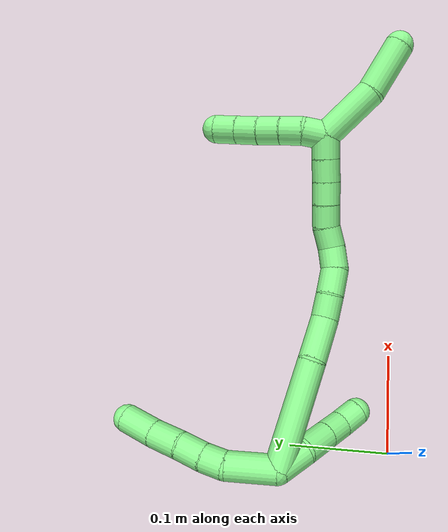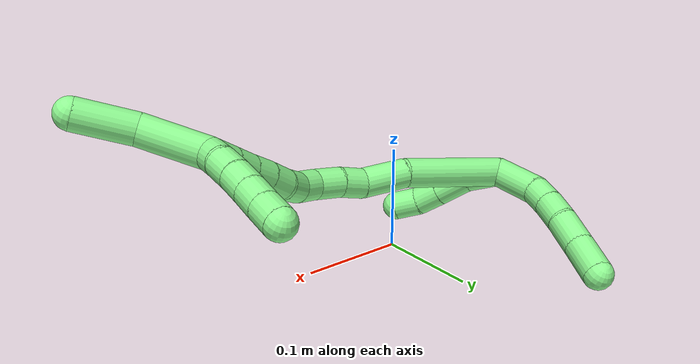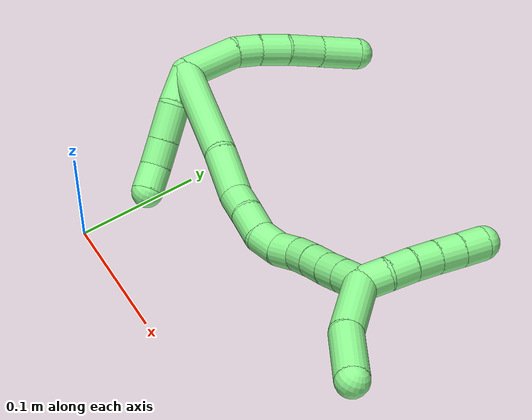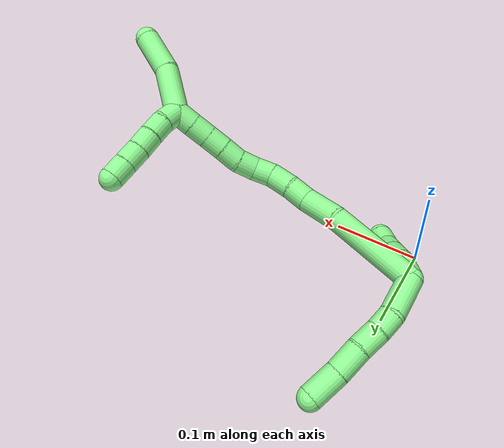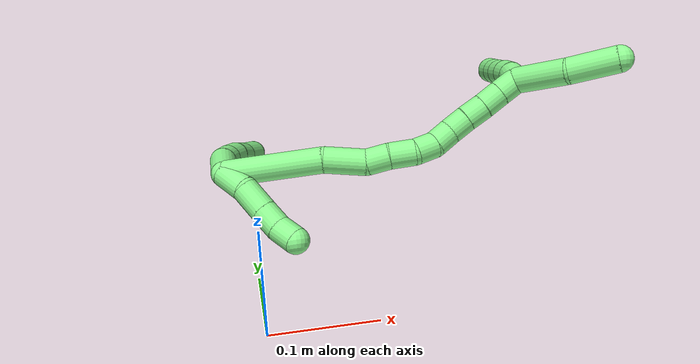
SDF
<sdf version="1.7">
 <world name="default">
  <model name="13">
   <static>0</static>
   <link name="13">
    <collision name="collision-cylinder-e_1_2_8">
     <pose>-0.000352 0.020056 0.009422 -1.13161 -0.015892 0.010093</pose>
     <geometry><cylinder><radius>0.0125</radius><length>0.044324</length></cylinder></geometry>
     <surface>
      <friction><ode><mu>1.16</mu><mu2>1.16</mu2><slip1>0</slip1><slip2>0</slip2></ode></friction>
      <contact><ode><kp>1e+06</kp><kd>1</kd><max_vel>0</max_vel><min_depth>0.001</min_depth></ode></contact>
     </surface>
    </collision>
    <visual name="visual-cylinder-e_1_2_8">
     <pose>-0.000352 0.020056 0.009422 -1.13161 -0.015892 0.010093</pose>
     <geometry><cylinder><radius>0.0125</radius><length>0.044324</length></cylinder></geometry>
     <material><ambient>0.564706 0.984314 0.572549 1</ambient></material>
    </visual>
    <collision name="collision-cylinder-e_2_8_9">
     <pose>0.001587 0.049597 0.02153 -1.29482 0.228405 -0.173024</pose>
     <geometry><cylinder><radius>0.0125</radius><length>0.02024</length></cylinder></geometry>
     <surface>
      <friction><ode><mu>1.16</mu><mu2>1.16</mu2><slip1>0</slip1><slip2>0</slip2></ode></friction>
      <contact><ode><kp>1e+06</kp><kd>1</kd><max_vel>0</max_vel><min_depth>0.001</min_depth></ode></contact>
     </surface>
    </collision>
    <visual name="visual-cylinder-e_2_8_9">
     <pose>0.001587 0.049597 0.02153 -1.29482 0.228405 -0.173024</pose>
     <geometry><cylinder><radius>0.0125</radius><length>0.02024</length></cylinder></geometry>
     <material><ambient>0.564706 0.984314 0.572549 1</ambient></material>
    </visual>
    <collision name="collision-cylinder-e_3_9_10">
     <pose>0.007681 0.070007 0.02702 -1.3196 0.325144 -0.253129</pose>
     <geometry><cylinder><radius>0.0125</radius><length>0.023807</length></cylinder></geometry>
     <surface>
      <friction><ode><mu>1.16</mu><mu2>1.16</mu2><slip1>0</slip1><slip2>0</slip2></ode></friction>
      <contact><ode><kp>1e+06</kp><kd>1</kd><max_vel>0</max_vel><min_depth>0.001</min_depth></ode></contact>
     </surface>
    </collision>
    <visual name="visual-cylinder-e_3_9_10">
     <pose>0.007681 0.070007 0.02702 -1.3196 0.325144 -0.253129</pose>
     <geometry><cylinder><radius>0.0125</radius><length>0.023807</length></cylinder></geometry>
     <material><ambient>0.564706 0.984314 0.572549 1</ambient></material>
    </visual>
    <collision name="collision-cylinder-e_4_10_11">
     <pose>0.015282 0.094791 0.031475 -1.45221 0.265754 -0.236265</pose>
     <geometry><cylinder><radius>0.0125</radius><length>0.028928</length></cylinder></geometry>
     <surface>
      <friction><ode><mu>1.16</mu><mu2>1.16</mu2><slip1>0</slip1><slip2>0</slip2></ode></friction>
      <contact><ode><kp>1e+06</kp><kd>1</kd><max_vel>0</max_vel><min_depth>0.001</min_depth></ode></contact>
     </surface>
    </collision>
    <visual name="visual-cylinder-e_4_10_11">
     <pose>0.015282 0.094791 0.031475 -1.45221 0.265754 -0.236265</pose>
     <geometry><cylinder><radius>0.0125</radius><length>0.028928</length></cylinder></geometry>
     <material><ambient>0.564706 0.984314 0.572549 1</ambient></material>
    </visual>
    <collision name="collision-cylinder-e_5_11_6">
     <pose>0.024626 0.123765 0.03597 -1.38484 0.346014 -0.287881</pose>
     <geometry><cylinder><radius>0.0125</radius><length>0.032701</length></cylinder></geometry>
     <surface>
      <friction><ode><mu>1.16</mu><mu2>1.16</mu2><slip1>0</slip1><slip2>0</slip2></ode></friction>
      <contact><ode><kp>1e+06</kp><kd>1</kd><max_vel>0</max_vel><min_depth>0.001</min_depth></ode></contact>
     </surface>
    </collision>
    <visual name="visual-cylinder-e_5_11_6">
     <pose>0.024626 0.123765 0.03597 -1.38484 0.346014 -0.287881</pose>
     <geometry><cylinder><radius>0.0125</radius><length>0.032701</length></cylinder></geometry>
     <material><ambient>0.564706 0.984314 0.572549 1</ambient></material>
    </visual>
    <collision name="collision-cylinder-e_1_2_12">
     <pose>0.008332 -0.007172 -0.009171 2.47792 0.621139 1.49984</pose>
     <geometry><cylinder><radius>0.0125</radius><length>0.028633</length></cylinder></geometry>
     <surface>
      <friction><ode><mu>1.16</mu><mu2>1.16</mu2><slip1>0</slip1><slip2>0</slip2></ode></friction>
      <contact><ode><kp>1e+06</kp><kd>1</kd><max_vel>0</max_vel><min_depth>0.001</min_depth></ode></contact>
     </surface>
    </collision>
    <visual name="visual-cylinder-e_1_2_12">
     <pose>0.008332 -0.007172 -0.009171 2.47792 0.621139 1.49984</pose>
     <geometry><cylinder><radius>0.0125</radius><length>0.028633</length></cylinder></geometry>
     <material><ambient>0.564706 0.984314 0.572549 1</ambient></material>
    </visual>
    <collision name="collision-cylinder-e_2_12_13">
     <pose>0.023778 -0.018457 -0.030067 2.80416 0.520069 2.00265</pose>
     <geometry><cylinder><radius>0.0125</radius><length>0.028637</length></cylinder></geometry>
     <surface>
      <friction><ode><mu>1.16</mu><mu2>1.16</mu2><slip1>0</slip1><slip2>0</slip2></ode></friction>
      <contact><ode><kp>1e+06</kp><kd>1</kd><max_vel>0</max_vel><min_depth>0.001</min_depth></ode></contact>
     </surface>
    </collision>
    <visual name="visual-cylinder-e_2_12_13">
     <pose>0.023778 -0.018457 -0.030067 2.80416 0.520069 2.00265</pose>
     <geometry><cylinder><radius>0.0125</radius><length>0.028637</length></cylinder></geometry>
     <material><ambient>0.564706 0.984314 0.572549 1</ambient></material>
    </visual>
    <collision name="collision-cylinder-e_3_13_14">
     <pose>0.03634 -0.025876 -0.050493 2.77861 0.529366 1.95128</pose>
     <geometry><cylinder><radius>0.0125</radius><length>0.021568</length></cylinder></geometry>
     <surface>
      <friction><ode><mu>1.16</mu><mu2>1.16</mu2><slip1>0</slip1><slip2>0</slip2></ode></friction>
      <contact><ode><kp>1e+06</kp><kd>1</kd><max_vel>0</max_vel><min_depth>0.001</min_depth></ode></contact>
     </surface>
    </collision>
    <visual name="visual-cylinder-e_3_13_14">
     <pose>0.03634 -0.025876 -0.050493 2.77861 0.529366 1.95128</pose>
     <geometry><cylinder><radius>0.0125</radius><length>0.021568</length></cylinder></geometry>
     <material><ambient>0.564706 0.984314 0.572549 1</ambient></material>
    </visual>
    <collision name="collision-cylinder-e_4_14_5">
     <pose>0.048258 -0.034104 -0.065964 2.51282 0.658238 1.6199</pose>
     <geometry><cylinder><radius>0.0125</radius><length>0.021162</length></cylinder></geometry>
     <surface>
      <friction><ode><mu>1.16</mu><mu2>1.16</mu2><slip1>0</slip1><slip2>0</slip2></ode></friction>
      <contact><ode><kp>1e+06</kp><kd>1</kd><max_vel>0</max_vel><min_depth>0.001</min_depth></ode></contact>
     </surface>
    </collision>
    <visual name="visual-cylinder-e_4_14_5">
     <pose>0.048258 -0.034104 -0.065964 2.51282 0.658238 1.6199</pose>
     <geometry><cylinder><radius>0.0125</radius><length>0.021162</length></cylinder></geometry>
     <material><ambient>0.564706 0.984314 0.572549 1</ambient></material>
    </visual>
    <collision name="collision-cylinder-e_1_2_15">
     <pose>0.045416 -0.01206 -0.001095 1.66137 1.31023 1.39878</pose>
     <geometry><cylinder><radius>0.0125</radius><length>0.094005</length></cylinder></geometry>
     <surface>
      <friction><ode><mu>1.16</mu><mu2>1.16</mu2><slip1>0</slip1><slip2>0</slip2></ode></friction>
      <contact><ode><kp>1e+06</kp><kd>1</kd><max_vel>0</max_vel><min_depth>0.001</min_depth></ode></contact>
     </surface>
    </collision>
    <visual name="visual-cylinder-e_1_2_15">
     <pose>0.045416 -0.01206 -0.001095 1.66137 1.31023 1.39878</pose>
     <geometry><cylinder><radius>0.0125</radius><length>0.094005</length></cylinder></geometry>
     <material><ambient>0.564706 0.984314 0.572549 1</ambient></material>
    </visual>
    <collision name="collision-cylinder-e_2_15_16">
     <pose>0.110044 -0.027126 -0.006342 2.51473 1.31006 2.34306</pose>
     <geometry><cylinder><radius>0.0125</radius><length>0.039768</length></cylinder></geometry>
     <surface>
      <friction><ode><mu>1.16</mu><mu2>1.16</mu2><slip1>0</slip1><slip2>0</slip2></ode></friction>
      <contact><ode><kp>1e+06</kp><kd>1</kd><max_vel>0</max_vel><min_depth>0.001</min_depth></ode></contact>
     </surface>
    </collision>
    <visual name="visual-cylinder-e_2_15_16">
     <pose>0.110044 -0.027126 -0.006342 2.51473 1.31006 2.34306</pose>
     <geometry><cylinder><radius>0.0125</radius><length>0.039768</length></cylinder></geometry>
     <material><ambient>0.564706 0.984314 0.572549 1</ambient></material>
    </visual>
    <collision name="collision-cylinder-e_3_16_17">
     <pose>0.139866 -0.032572 -0.009268 1.10525 1.319 0.892023</pose>
     <geometry><cylinder><radius>0.0125</radius><length>0.021911</length></cylinder></geometry>
     <surface>
      <friction><ode><mu>1.16</mu><mu2>1.16</mu2><slip1>0</slip1><slip2>0</slip2></ode></friction>
      <contact><ode><kp>1e+06</kp><kd>1</kd><max_vel>0</max_vel><min_depth>0.001</min_depth></ode></contact>
     </surface>
    </collision>
    <visual name="visual-cylinder-e_3_16_17">
     <pose>0.139866 -0.032572 -0.009268 1.10525 1.319 0.892023</pose>
     <geometry><cylinder><radius>0.0125</radius><length>0.021911</length></cylinder></geometry>
     <material><ambient>0.564706 0.984314 0.572549 1</ambient></material>
    </visual>
    <collision name="collision-cylinder-e_4_17_18">
     <pose>0.162396 -0.03675 -0.007972 1.53003 1.42582 1.38559</pose>
     <geometry><cylinder><radius>0.0125</radius><length>0.024094</length></cylinder></geometry>
     <surface>
      <friction><ode><mu>1.16</mu><mu2>1.16</mu2><slip1>0</slip1><slip2>0</slip2></ode></friction>
      <contact><ode><kp>1e+06</kp><kd>1</kd><max_vel>0</max_vel><min_depth>0.001</min_depth></ode></contact>
     </surface>
    </collision>
    <visual name="visual-cylinder-e_4_17_18">
     <pose>0.162396 -0.03675 -0.007972 1.53003 1.42582 1.38559</pose>
     <geometry><cylinder><radius>0.0125</radius><length>0.024094</length></cylinder></geometry>
     <material><ambient>0.564706 0.984314 0.572549 1</ambient></material>
    </visual>
    <collision name="collision-cylinder-e_5_18_19">
     <pose>0.184039 -0.037447 -0.005537 -0.415163 1.31115 -0.321153</pose>
     <geometry><cylinder><radius>0.0125</radius><length>0.020118</length></cylinder></geometry>
     <surface>
      <friction><ode><mu>1.16</mu><mu2>1.16</mu2><slip1>0</slip1><slip2>0</slip2></ode></friction>
      <contact><ode><kp>1e+06</kp><kd>1</kd><max_vel>0</max_vel><min_depth>0.001</min_depth></ode></contact>
     </surface>
    </collision>
    <visual name="visual-cylinder-e_5_18_19">
     <pose>0.184039 -0.037447 -0.005537 -0.415163 1.31115 -0.321153</pose>
     <geometry><cylinder><radius>0.0125</radius><length>0.020118</length></cylinder></geometry>
     <material><ambient>0.564706 0.984314 0.572549 1</ambient></material>
    </visual>
    <collision name="collision-cylinder-e_6_19_20">
     <pose>0.202232 -0.035569 0.002121 -0.156696 1.00662 -0.086402</pose>
     <geometry><cylinder><radius>0.0125</radius><length>0.02005</length></cylinder></geometry>
     <surface>
      <friction><ode><mu>1.16</mu><mu2>1.16</mu2><slip1>0</slip1><slip2>0</slip2></ode></friction>
      <contact><ode><kp>1e+06</kp><kd>1</kd><max_vel>0</max_vel><min_depth>0.001</min_depth></ode></contact>
     </surface>
    </collision>
    <visual name="visual-cylinder-e_6_19_20">
     <pose>0.202232 -0.035569 0.002121 -0.156696 1.00662 -0.086402</pose>
     <geometry><cylinder><radius>0.0125</radius><length>0.02005</length></cylinder></geometry>
     <material><ambient>0.564706 0.984314 0.572549 1</ambient></material>
    </visual>
    <collision name="collision-cylinder-e_7_20_21">
     <pose>0.219207 -0.036441 0.012416 0.329201 1.01474 0.184155</pose>
     <geometry><cylinder><radius>0.0125</radius><length>0.020024</length></cylinder></geometry>
     <surface>
      <friction><ode><mu>1.16</mu><mu2>1.16</mu2><slip1>0</slip1><slip2>0</slip2></ode></friction>
      <contact><ode><kp>1e+06</kp><kd>1</kd><max_vel>0</max_vel><min_depth>0.001</min_depth></ode></contact>
     </surface>
    </collision>
    <visual name="visual-cylinder-e_7_20_21">
     <pose>0.219207 -0.036441 0.012416 0.329201 1.01474 0.184155</pose>
     <geometry><cylinder><radius>0.0125</radius><length>0.020024</length></cylinder></geometry>
     <material><ambient>0.564706 0.984314 0.572549 1</ambient></material>
    </visual>
    <collision name="collision-cylinder-e_8_21_22">
     <pose>0.236476 -0.039721 0.02197 0.332326 1.06836 0.197768</pose>
     <geometry><cylinder><radius>0.0125</radius><length>0.020003</length></cylinder></geometry>
     <surface>
      <friction><ode><mu>1.16</mu><mu2>1.16</mu2><slip1>0</slip1><slip2>0</slip2></ode></friction>
      <contact><ode><kp>1e+06</kp><kd>1</kd><max_vel>0</max_vel><min_depth>0.001</min_depth></ode></contact>
     </surface>
    </collision>
    <visual name="visual-cylinder-e_8_21_22">
     <pose>0.236476 -0.039721 0.02197 0.332326 1.06836 0.197768</pose>
     <geometry><cylinder><radius>0.0125</radius><length>0.020003</length></cylinder></geometry>
     <material><ambient>0.564706 0.984314 0.572549 1</ambient></material>
    </visual>
    <collision name="collision-cylinder-e_9_22_23">
     <pose>0.253786 -0.042726 0.031542 0.278284 1.0224 0.156793</pose>
     <geometry><cylinder><radius>0.0125</radius><length>0.020026</length></cylinder></geometry>
     <surface>
      <friction><ode><mu>1.16</mu><mu2>1.16</mu2><slip1>0</slip1><slip2>0</slip2></ode></friction>
      <contact><ode><kp>1e+06</kp><kd>1</kd><max_vel>0</max_vel><min_depth>0.001</min_depth></ode></contact>
     </surface>
    </collision>
    <visual name="visual-cylinder-e_9_22_23">
     <pose>0.253786 -0.042726 0.031542 0.278284 1.0224 0.156793</pose>
     <geometry><cylinder><radius>0.0125</radius><length>0.020026</length></cylinder></geometry>
     <material><ambient>0.564706 0.984314 0.572549 1</ambient></material>
    </visual>
    <collision name="collision-cylinder-e_10_23_1">
     <pose>0.270919 -0.045723 0.04144 0.310071 1.03297 0.177051</pose>
     <geometry><cylinder><radius>0.0125</radius><length>0.020002</length></cylinder></geometry>
     <surface>
      <friction><ode><mu>1.16</mu><mu2>1.16</mu2><slip1>0</slip1><slip2>0</slip2></ode></friction>
      <contact><ode><kp>1e+06</kp><kd>1</kd><max_vel>0</max_vel><min_depth>0.001</min_depth></ode></contact>
     </surface>
    </collision>
    <visual name="visual-cylinder-e_10_23_1">
     <pose>0.270919 -0.045723 0.04144 0.310071 1.03297 0.177051</pose>
     <geometry><cylinder><radius>0.0125</radius><length>0.020002</length></cylinder></geometry>
     <material><ambient>0.564706 0.984314 0.572549 1</ambient></material>
    </visual>
    <collision name="collision-cylinder-e_1_1_24">
     <pose>0.298016 -0.066376 0.043858 1.69901 0.765805 0.859044</pose>
     <geometry><cylinder><radius>0.0125</radius><length>0.053405</length></cylinder></geometry>
     <surface>
      <friction><ode><mu>1.16</mu><mu2>1.16</mu2><slip1>0</slip1><slip2>0</slip2></ode></friction>
      <contact><ode><kp>1e+06</kp><kd>1</kd><max_vel>0</max_vel><min_depth>0.001</min_depth></ode></contact>
     </surface>
    </collision>
    <visual name="visual-cylinder-e_1_1_24">
     <pose>0.298016 -0.066376 0.043858 1.69901 0.765805 0.859044</pose>
     <geometry><cylinder><radius>0.0125</radius><length>0.053405</length></cylinder></geometry>
     <material><ambient>0.564706 0.984314 0.572549 1</ambient></material>
    </visual>
    <collision name="collision-cylinder-e_2_24_4">
     <pose>0.336436 -0.09756 0.041644 1.55031 1.02489 1.00747</pose>
     <geometry><cylinder><radius>0.0125</radius><length>0.046595</length></cylinder></geometry>
     <surface>
      <friction><ode><mu>1.16</mu><mu2>1.16</mu2><slip1>0</slip1><slip2>0</slip2></ode></friction>
      <contact><ode><kp>1e+06</kp><kd>1</kd><max_vel>0</max_vel><min_depth>0.001</min_depth></ode></contact>
     </surface>
    </collision>
    <visual name="visual-cylinder-e_2_24_4">
     <pose>0.336436 -0.09756 0.041644 1.55031 1.02489 1.00747</pose>
     <geometry><cylinder><radius>0.0125</radius><length>0.046595</length></cylinder></geometry>
     <material><ambient>0.564706 0.984314 0.572549 1</ambient></material>
    </visual>
    <collision name="collision-cylinder-e_1_1_25">
     <pose>0.280934 -0.038709 0.051258 -1.04834 0.143089 -0.082815</pose>
     <geometry><cylinder><radius>0.0125</radius><length>0.02</length></cylinder></geometry>
     <surface>
      <friction><ode><mu>1.16</mu><mu2>1.16</mu2><slip1>0</slip1><slip2>0</slip2></ode></friction>
      <contact><ode><kp>1e+06</kp><kd>1</kd><max_vel>0</max_vel><min_depth>0.001</min_depth></ode></contact>
     </surface>
    </collision>
    <visual name="visual-cylinder-e_1_1_25">
     <pose>0.280934 -0.038709 0.051258 -1.04834 0.143089 -0.082815</pose>
     <geometry><cylinder><radius>0.0125</radius><length>0.02</length></cylinder></geometry>
     <material><ambient>0.564706 0.984314 0.572549 1</ambient></material>
    </visual>
    <collision name="collision-cylinder-e_2_25_26">
     <pose>0.282673 -0.020737 0.05961 -1.22236 0.031228 -0.021881</pose>
     <geometry><cylinder><radius>0.0125</radius><length>0.02</length></cylinder></geometry>
     <surface>
      <friction><ode><mu>1.16</mu><mu2>1.16</mu2><slip1>0</slip1><slip2>0</slip2></ode></friction>
      <contact><ode><kp>1e+06</kp><kd>1</kd><max_vel>0</max_vel><min_depth>0.001</min_depth></ode></contact>
     </surface>
    </collision>
    <visual name="visual-cylinder-e_2_25_26">
     <pose>0.282673 -0.020737 0.05961 -1.22236 0.031228 -0.021881</pose>
     <geometry><cylinder><radius>0.0125</radius><length>0.02</length></cylinder></geometry>
     <material><ambient>0.564706 0.984314 0.572549 1</ambient></material>
    </visual>
    <collision name="collision-cylinder-e_3_26_27">
     <pose>0.283439 -0.001761 0.06585 -1.28382 0.045437 -0.033968</pose>
     <geometry><cylinder><radius>0.0125</radius><length>0.02</length></cylinder></geometry>
     <surface>
      <friction><ode><mu>1.16</mu><mu2>1.16</mu2><slip1>0</slip1><slip2>0</slip2></ode></friction>
      <contact><ode><kp>1e+06</kp><kd>1</kd><max_vel>0</max_vel><min_depth>0.001</min_depth></ode></contact>
     </surface>
    </collision>
    <visual name="visual-cylinder-e_3_26_27">
     <pose>0.283439 -0.001761 0.06585 -1.28382 0.045437 -0.033968</pose>
     <geometry><cylinder><radius>0.0125</radius><length>0.02</length></cylinder></geometry>
     <material><ambient>0.564706 0.984314 0.572549 1</ambient></material>
    </visual>
    <collision name="collision-cylinder-e_4_27_28">
     <pose>0.284712 0.017342 0.071619 -1.27116 0.081968 -0.060483</pose>
     <geometry><cylinder><radius>0.0125</radius><length>0.02</length></cylinder></geometry>
     <surface>
      <friction><ode><mu>1.16</mu><mu2>1.16</mu2><slip1>0</slip1><slip2>0</slip2></ode></friction>
      <contact><ode><kp>1e+06</kp><kd>1</kd><max_vel>0</max_vel><min_depth>0.001</min_depth></ode></contact>
     </surface>
    </collision>
    <visual name="visual-cylinder-e_4_27_28">
     <pose>0.284712 0.017342 0.071619 -1.27116 0.081968 -0.060483</pose>
     <geometry><cylinder><radius>0.0125</radius><length>0.02</length></cylinder></geometry>
     <material><ambient>0.564706 0.984314 0.572549 1</ambient></material>
    </visual>
    <collision name="collision-cylinder-e_5_28_3">
     <pose>0.28627 0.03634 0.07767 -1.2538 0.074001 -0.053616</pose>
     <geometry><cylinder><radius>0.0125</radius><length>0.02</length></cylinder></geometry>
     <surface>
      <friction><ode><mu>1.16</mu><mu2>1.16</mu2><slip1>0</slip1><slip2>0</slip2></ode></friction>
      <contact><ode><kp>1e+06</kp><kd>1</kd><max_vel>0</max_vel><min_depth>0.001</min_depth></ode></contact>
     </surface>
    </collision>
    <visual name="visual-cylinder-e_5_28_3">
     <pose>0.28627 0.03634 0.07767 -1.2538 0.074001 -0.053616</pose>
     <geometry><cylinder><radius>0.0125</radius><length>0.02</length></cylinder></geometry>
     <material><ambient>0.564706 0.984314 0.572549 1</ambient></material>
    </visual>
    <collision name="collision-sphere-3">
     <pose>0.287009 0.045816 0.080778 0 -0 0</pose>
     <geometry><sphere><radius>0.0125</radius></sphere></geometry>
     <surface>
      <friction><ode><mu>1.16</mu><mu2>1.16</mu2><slip1>0</slip1><slip2>0</slip2></ode></friction>
      <contact><ode><kp>1e+06</kp><kd>1</kd><max_vel>0</max_vel><min_depth>0.001</min_depth></ode></contact>
     </surface>
    </collision>
    <visual name="visual-sphere-3">
     <pose>0.287009 0.045816 0.080778 0 -0 0</pose>
     <geometry><sphere><radius>0.0125</radius></sphere></geometry>
     <material><ambient>0.564706 0.984314 0.572549 1</ambient></material>
    </visual>
    <collision name="collision-sphere-28">
     <pose>0.285531 0.026864 0.074561 0 -0 0</pose>
     <geometry><sphere><radius>0.0125</radius></sphere></geometry>
     <surface>
      <friction><ode><mu>1.16</mu><mu2>1.16</mu2><slip1>0</slip1><slip2>0</slip2></ode></friction>
      <contact><ode><kp>1e+06</kp><kd>1</kd><max_vel>0</max_vel><min_depth>0.001</min_depth></ode></contact>
     </surface>
    </collision>
    <visual name="visual-sphere-28">
     <pose>0.285531 0.026864 0.074561 0 -0 0</pose>
     <geometry><sphere><radius>0.0125</radius></sphere></geometry>
     <material><ambient>0.564706 0.984314 0.572549 1</ambient></material>
    </visual>
    <collision name="collision-sphere-27">
     <pose>0.283893 0.00782 0.068677 0 -0 0</pose>
     <geometry><sphere><radius>0.0125</radius></sphere></geometry>
     <surface>
      <friction><ode><mu>1.16</mu><mu2>1.16</mu2><slip1>0</slip1><slip2>0</slip2></ode></friction>
      <contact><ode><kp>1e+06</kp><kd>1</kd><max_vel>0</max_vel><min_depth>0.001</min_depth></ode></contact>
     </surface>
    </collision>
    <visual name="visual-sphere-27">
     <pose>0.283893 0.00782 0.068677 0 -0 0</pose>
     <geometry><sphere><radius>0.0125</radius></sphere></geometry>
     <material><ambient>0.564706 0.984314 0.572549 1</ambient></material>
    </visual>
    <collision name="collision-sphere-26">
     <pose>0.282985 -0.011343 0.063022 0 -0 0</pose>
     <geometry><sphere><radius>0.0125</radius></sphere></geometry>
     <surface>
      <friction><ode><mu>1.16</mu><mu2>1.16</mu2><slip1>0</slip1><slip2>0</slip2></ode></friction>
      <contact><ode><kp>1e+06</kp><kd>1</kd><max_vel>0</max_vel><min_depth>0.001</min_depth></ode></contact>
     </surface>
    </collision>
    <visual name="visual-sphere-26">
     <pose>0.282985 -0.011343 0.063022 0 -0 0</pose>
     <geometry><sphere><radius>0.0125</radius></sphere></geometry>
     <material><ambient>0.564706 0.984314 0.572549 1</ambient></material>
    </visual>
    <collision name="collision-sphere-25">
     <pose>0.28236 -0.030131 0.056197 0 -0 0</pose>
     <geometry><sphere><radius>0.0125</radius></sphere></geometry>
     <surface>
      <friction><ode><mu>1.16</mu><mu2>1.16</mu2><slip1>0</slip1><slip2>0</slip2></ode></friction>
      <contact><ode><kp>1e+06</kp><kd>1</kd><max_vel>0</max_vel><min_depth>0.001</min_depth></ode></contact>
     </surface>
    </collision>
    <visual name="visual-sphere-25">
     <pose>0.28236 -0.030131 0.056197 0 -0 0</pose>
     <geometry><sphere><radius>0.0125</radius></sphere></geometry>
     <material><ambient>0.564706 0.984314 0.572549 1</ambient></material>
    </visual>
    <collision name="collision-sphere-4">
     <pose>0.356347 -0.109653 0.041892 0 -0 0</pose>
     <geometry><sphere><radius>0.0125</radius></sphere></geometry>
     <surface>
      <friction><ode><mu>1.16</mu><mu2>1.16</mu2><slip1>0</slip1><slip2>0</slip2></ode></friction>
      <contact><ode><kp>1e+06</kp><kd>1</kd><max_vel>0</max_vel><min_depth>0.001</min_depth></ode></contact>
     </surface>
    </collision>
    <visual name="visual-sphere-4">
     <pose>0.356347 -0.109653 0.041892 0 -0 0</pose>
     <geometry><sphere><radius>0.0125</radius></sphere></geometry>
     <material><ambient>0.564706 0.984314 0.572549 1</ambient></material>
    </visual>
    <collision name="collision-sphere-24">
     <pose>0.316525 -0.085466 0.041396 0 -0 0</pose>
     <geometry><sphere><radius>0.0125</radius></sphere></geometry>
     <surface>
      <friction><ode><mu>1.16</mu><mu2>1.16</mu2><slip1>0</slip1><slip2>0</slip2></ode></friction>
      <contact><ode><kp>1e+06</kp><kd>1</kd><max_vel>0</max_vel><min_depth>0.001</min_depth></ode></contact>
     </surface>
    </collision>
    <visual name="visual-sphere-24">
     <pose>0.316525 -0.085466 0.041396 0 -0 0</pose>
     <geometry><sphere><radius>0.0125</radius></sphere></geometry>
     <material><ambient>0.564706 0.984314 0.572549 1</ambient></material>
    </visual>
    <collision name="collision-sphere-1">
     <pose>0.279508 -0.047286 0.046319 0 -0 0</pose>
     <geometry><sphere><radius>0.0125</radius></sphere></geometry>
     <surface>
      <friction><ode><mu>1.16</mu><mu2>1.16</mu2><slip1>0</slip1><slip2>0</slip2></ode></friction>
      <contact><ode><kp>1e+06</kp><kd>1</kd><max_vel>0</max_vel><min_depth>0.001</min_depth></ode></contact>
     </surface>
    </collision>
    <visual name="visual-sphere-1">
     <pose>0.279508 -0.047286 0.046319 0 -0 0</pose>
     <geometry><sphere><radius>0.0125</radius></sphere></geometry>
     <material><ambient>0.564706 0.984314 0.572549 1</ambient></material>
    </visual>
    <collision name="collision-sphere-23">
     <pose>0.26233 -0.04416 0.036561 0 -0 0</pose>
     <geometry><sphere><radius>0.0125</radius></sphere></geometry>
     <surface>
      <friction><ode><mu>1.16</mu><mu2>1.16</mu2><slip1>0</slip1><slip2>0</slip2></ode></friction>
      <contact><ode><kp>1e+06</kp><kd>1</kd><max_vel>0</max_vel><min_depth>0.001</min_depth></ode></contact>
     </surface>
    </collision>
    <visual name="visual-sphere-23">
     <pose>0.26233 -0.04416 0.036561 0 -0 0</pose>
     <geometry><sphere><radius>0.0125</radius></sphere></geometry>
     <material><ambient>0.564706 0.984314 0.572549 1</ambient></material>
    </visual>
    <collision name="collision-sphere-22">
     <pose>0.245241 -0.041292 0.026523 0 -0 0</pose>
     <geometry><sphere><radius>0.0125</radius></sphere></geometry>
     <surface>
      <friction><ode><mu>1.16</mu><mu2>1.16</mu2><slip1>0</slip1><slip2>0</slip2></ode></friction>
      <contact><ode><kp>1e+06</kp><kd>1</kd><max_vel>0</max_vel><min_depth>0.001</min_depth></ode></contact>
     </surface>
    </collision>
    <visual name="visual-sphere-22">
     <pose>0.245241 -0.041292 0.026523 0 -0 0</pose>
     <geometry><sphere><radius>0.0125</radius></sphere></geometry>
     <material><ambient>0.564706 0.984314 0.572549 1</ambient></material>
    </visual>
    <collision name="collision-sphere-21">
     <pose>0.227711 -0.038149 0.017417 0 -0 0</pose>
     <geometry><sphere><radius>0.0125</radius></sphere></geometry>
     <surface>
      <friction><ode><mu>1.16</mu><mu2>1.16</mu2><slip1>0</slip1><slip2>0</slip2></ode></friction>
      <contact><ode><kp>1e+06</kp><kd>1</kd><max_vel>0</max_vel><min_depth>0.001</min_depth></ode></contact>
     </surface>
    </collision>
    <visual name="visual-sphere-21">
     <pose>0.227711 -0.038149 0.017417 0 -0 0</pose>
     <geometry><sphere><radius>0.0125</radius></sphere></geometry>
     <material><ambient>0.564706 0.984314 0.572549 1</ambient></material>
    </visual>
    <collision name="collision-sphere-6">
     <pose>0.030172 0.138881 0.038814 0 -0 0</pose>
     <geometry><sphere><radius>0.0125</radius></sphere></geometry>
     <surface>
      <friction><ode><mu>1.16</mu><mu2>1.16</mu2><slip1>0</slip1><slip2>0</slip2></ode></friction>
      <contact><ode><kp>1e+06</kp><kd>1</kd><max_vel>0</max_vel><min_depth>0.001</min_depth></ode></contact>
     </surface>
    </collision>
    <visual name="visual-sphere-6">
     <pose>0.030172 0.138881 0.038814 0 -0 0</pose>
     <geometry><sphere><radius>0.0125</radius></sphere></geometry>
     <material><ambient>0.564706 0.984314 0.572549 1</ambient></material>
    </visual>
    <collision name="collision-sphere-11">
     <pose>0.019081 0.108649 0.033126 0 -0 0</pose>
     <geometry><sphere><radius>0.0125</radius></sphere></geometry>
     <surface>
      <friction><ode><mu>1.16</mu><mu2>1.16</mu2><slip1>0</slip1><slip2>0</slip2></ode></friction>
      <contact><ode><kp>1e+06</kp><kd>1</kd><max_vel>0</max_vel><min_depth>0.001</min_depth></ode></contact>
     </surface>
    </collision>
    <visual name="visual-sphere-11">
     <pose>0.019081 0.108649 0.033126 0 -0 0</pose>
     <geometry><sphere><radius>0.0125</radius></sphere></geometry>
     <material><ambient>0.564706 0.984314 0.572549 1</ambient></material>
    </visual>
    <collision name="collision-sphere-10">
     <pose>0.011484 0.080933 0.029824 0 -0 0</pose>
     <geometry><sphere><radius>0.0125</radius></sphere></geometry>
     <surface>
      <friction><ode><mu>1.16</mu><mu2>1.16</mu2><slip1>0</slip1><slip2>0</slip2></ode></friction>
      <contact><ode><kp>1e+06</kp><kd>1</kd><max_vel>0</max_vel><min_depth>0.001</min_depth></ode></contact>
     </surface>
    </collision>
    <visual name="visual-sphere-10">
     <pose>0.011484 0.080933 0.029824 0 -0 0</pose>
     <geometry><sphere><radius>0.0125</radius></sphere></geometry>
     <material><ambient>0.564706 0.984314 0.572549 1</ambient></material>
    </visual>
    <collision name="collision-sphere-9">
     <pose>0.003878 0.059081 0.024216 0 -0 0</pose>
     <geometry><sphere><radius>0.0125</radius></sphere></geometry>
     <surface>
      <friction><ode><mu>1.16</mu><mu2>1.16</mu2><slip1>0</slip1><slip2>0</slip2></ode></friction>
      <contact><ode><kp>1e+06</kp><kd>1</kd><max_vel>0</max_vel><min_depth>0.001</min_depth></ode></contact>
     </surface>
    </collision>
    <visual name="visual-sphere-9">
     <pose>0.003878 0.059081 0.024216 0 -0 0</pose>
     <geometry><sphere><radius>0.0125</radius></sphere></geometry>
     <material><ambient>0.564706 0.984314 0.572549 1</ambient></material>
    </visual>
    <collision name="collision-sphere-2">
     <geometry><sphere><radius>0.0125</radius></sphere></geometry>
     <surface>
      <friction><ode><mu>1.16</mu><mu2>1.16</mu2><slip1>0</slip1><slip2>0</slip2></ode></friction>
      <contact><ode><kp>1e+06</kp><kd>1</kd><max_vel>0</max_vel><min_depth>0.001</min_depth></ode></contact>
     </surface>
    </collision>
    <visual name="visual-sphere-2">
     <geometry><sphere><radius>0.0125</radius></sphere></geometry>
     <material><ambient>0.564706 0.984314 0.572549 1</ambient></material>
    </visual>
    <collision name="collision-sphere-19">
     <pose>0.193761 -0.036406 -0.003174 0 -0 0</pose>
     <geometry><sphere><radius>0.0125</radius></sphere></geometry>
     <surface>
      <friction><ode><mu>1.16</mu><mu2>1.16</mu2><slip1>0</slip1><slip2>0</slip2></ode></friction>
      <contact><ode><kp>1e+06</kp><kd>1</kd><max_vel>0</max_vel><min_depth>0.001</min_depth></ode></contact>
     </surface>
    </collision>
    <visual name="visual-sphere-19">
     <pose>0.193761 -0.036406 -0.003174 0 -0 0</pose>
     <geometry><sphere><radius>0.0125</radius></sphere></geometry>
     <material><ambient>0.564706 0.984314 0.572549 1</ambient></material>
    </visual>
    <collision name="collision-sphere-8">
     <pose>-0.000704 0.040113 0.018844 0 -0 0</pose>
     <geometry><sphere><radius>0.0125</radius></sphere></geometry>
     <surface>
      <friction><ode><mu>1.16</mu><mu2>1.16</mu2><slip1>0</slip1><slip2>0</slip2></ode></friction>
      <contact><ode><kp>1e+06</kp><kd>1</kd><max_vel>0</max_vel><min_depth>0.001</min_depth></ode></contact>
     </surface>
    </collision>
    <visual name="visual-sphere-8">
     <pose>-0.000704 0.040113 0.018844 0 -0 0</pose>
     <geometry><sphere><radius>0.0125</radius></sphere></geometry>
     <material><ambient>0.564706 0.984314 0.572549 1</ambient></material>
    </visual>
    <collision name="collision-sphere-12">
     <pose>0.016663 -0.014344 -0.018342 0 -0 0</pose>
     <geometry><sphere><radius>0.0125</radius></sphere></geometry>
     <surface>
      <friction><ode><mu>1.16</mu><mu2>1.16</mu2><slip1>0</slip1><slip2>0</slip2></ode></friction>
      <contact><ode><kp>1e+06</kp><kd>1</kd><max_vel>0</max_vel><min_depth>0.001</min_depth></ode></contact>
     </surface>
    </collision>
    <visual name="visual-sphere-12">
     <pose>0.016663 -0.014344 -0.018342 0 -0 0</pose>
     <geometry><sphere><radius>0.0125</radius></sphere></geometry>
     <material><ambient>0.564706 0.984314 0.572549 1</ambient></material>
    </visual>
    <collision name="collision-sphere-13">
     <pose>0.030894 -0.022571 -0.041791 0 -0 0</pose>
     <geometry><sphere><radius>0.0125</radius></sphere></geometry>
     <surface>
      <friction><ode><mu>1.16</mu><mu2>1.16</mu2><slip1>0</slip1><slip2>0</slip2></ode></friction>
      <contact><ode><kp>1e+06</kp><kd>1</kd><max_vel>0</max_vel><min_depth>0.001</min_depth></ode></contact>
     </surface>
    </collision>
    <visual name="visual-sphere-13">
     <pose>0.030894 -0.022571 -0.041791 0 -0 0</pose>
     <geometry><sphere><radius>0.0125</radius></sphere></geometry>
     <material><ambient>0.564706 0.984314 0.572549 1</ambient></material>
    </visual>
    <collision name="collision-sphere-14">
     <pose>0.041785 -0.029181 -0.059194 0 -0 0</pose>
     <geometry><sphere><radius>0.0125</radius></sphere></geometry>
     <surface>
      <friction><ode><mu>1.16</mu><mu2>1.16</mu2><slip1>0</slip1><slip2>0</slip2></ode></friction>
      <contact><ode><kp>1e+06</kp><kd>1</kd><max_vel>0</max_vel><min_depth>0.001</min_depth></ode></contact>
     </surface>
    </collision>
    <visual name="visual-sphere-14">
     <pose>0.041785 -0.029181 -0.059194 0 -0 0</pose>
     <geometry><sphere><radius>0.0125</radius></sphere></geometry>
     <material><ambient>0.564706 0.984314 0.572549 1</ambient></material>
    </visual>
    <collision name="collision-sphere-5">
     <pose>0.054731 -0.039027 -0.072734 0 -0 0</pose>
     <geometry><sphere><radius>0.0125</radius></sphere></geometry>
     <surface>
      <friction><ode><mu>1.16</mu><mu2>1.16</mu2><slip1>0</slip1><slip2>0</slip2></ode></friction>
      <contact><ode><kp>1e+06</kp><kd>1</kd><max_vel>0</max_vel><min_depth>0.001</min_depth></ode></contact>
     </surface>
    </collision>
    <visual name="visual-sphere-5">
     <pose>0.054731 -0.039027 -0.072734 0 -0 0</pose>
     <geometry><sphere><radius>0.0125</radius></sphere></geometry>
     <material><ambient>0.564706 0.984314 0.572549 1</ambient></material>
    </visual>
    <collision name="collision-sphere-15">
     <pose>0.090832 -0.024119 -0.002191 0 -0 0</pose>
     <geometry><sphere><radius>0.0125</radius></sphere></geometry>
     <surface>
      <friction><ode><mu>1.16</mu><mu2>1.16</mu2><slip1>0</slip1><slip2>0</slip2></ode></friction>
      <contact><ode><kp>1e+06</kp><kd>1</kd><max_vel>0</max_vel><min_depth>0.001</min_depth></ode></contact>
     </surface>
    </collision>
    <visual name="visual-sphere-15">
     <pose>0.090832 -0.024119 -0.002191 0 -0 0</pose>
     <geometry><sphere><radius>0.0125</radius></sphere></geometry>
     <material><ambient>0.564706 0.984314 0.572549 1</ambient></material>
    </visual>
    <collision name="collision-sphere-16">
     <pose>0.129256 -0.030133 -0.010493 0 -0 0</pose>
     <geometry><sphere><radius>0.0125</radius></sphere></geometry>
     <surface>
      <friction><ode><mu>1.16</mu><mu2>1.16</mu2><slip1>0</slip1><slip2>0</slip2></ode></friction>
      <contact><ode><kp>1e+06</kp><kd>1</kd><max_vel>0</max_vel><min_depth>0.001</min_depth></ode></contact>
     </surface>
    </collision>
    <visual name="visual-sphere-16">
     <pose>0.129256 -0.030133 -0.010493 0 -0 0</pose>
     <geometry><sphere><radius>0.0125</radius></sphere></geometry>
     <material><ambient>0.564706 0.984314 0.572549 1</ambient></material>
    </visual>
    <collision name="collision-sphere-17">
     <pose>0.150475 -0.035011 -0.008042 0 -0 0</pose>
     <geometry><sphere><radius>0.0125</radius></sphere></geometry>
     <surface>
      <friction><ode><mu>1.16</mu><mu2>1.16</mu2><slip1>0</slip1><slip2>0</slip2></ode></friction>
      <contact><ode><kp>1e+06</kp><kd>1</kd><max_vel>0</max_vel><min_depth>0.001</min_depth></ode></contact>
     </surface>
    </collision>
    <visual name="visual-sphere-17">
     <pose>0.150475 -0.035011 -0.008042 0 -0 0</pose>
     <geometry><sphere><radius>0.0125</radius></sphere></geometry>
     <material><ambient>0.564706 0.984314 0.572549 1</ambient></material>
    </visual>
    <collision name="collision-sphere-18">
     <pose>0.174317 -0.038489 -0.007901 0 -0 0</pose>
     <geometry><sphere><radius>0.0125</radius></sphere></geometry>
     <surface>
      <friction><ode><mu>1.16</mu><mu2>1.16</mu2><slip1>0</slip1><slip2>0</slip2></ode></friction>
      <contact><ode><kp>1e+06</kp><kd>1</kd><max_vel>0</max_vel><min_depth>0.001</min_depth></ode></contact>
     </surface>
    </collision>
    <visual name="visual-sphere-18">
     <pose>0.174317 -0.038489 -0.007901 0 -0 0</pose>
     <geometry><sphere><radius>0.0125</radius></sphere></geometry>
     <material><ambient>0.564706 0.984314 0.572549 1</ambient></material>
    </visual>
    <collision name="collision-sphere-20">
     <pose>0.210703 -0.034732 0.007415 0 -0 0</pose>
     <geometry><sphere><radius>0.0125</radius></sphere></geometry>
     <surface>
      <friction><ode><mu>1.16</mu><mu2>1.16</mu2><slip1>0</slip1><slip2>0</slip2></ode></friction>
      <contact><ode><kp>1e+06</kp><kd>1</kd><max_vel>0</max_vel><min_depth>0.001</min_depth></ode></contact>
     </surface>
    </collision>
    <visual name="visual-sphere-20">
     <pose>0.210703 -0.034732 0.007415 0 -0 0</pose>
     <geometry><sphere><radius>0.0125</radius></sphere></geometry>
     <material><ambient>0.564706 0.984314 0.572549 1</ambient></material>
    </visual>
    <inertial>
     <pose>0.142833 -0.011305 0.016143 0 -0 0</pose>
     <mass>0.75</mass>
     <inertia>
      <ixx>0.000114</ixx>
      <ixy>0</ixy>
      <ixz>0</ixz>
      <iyy>0.000159</iyy>
      <iyz>0</iyz>
      <izz>-9.7e-05</izz>
     </inertia>
    </inertial>
   </link>
   <pose>-0.023277 0.113479 0.107626 -0.518213 -0.045094 -0.003344</pose>
  </model>
 </world>
</sdf>
